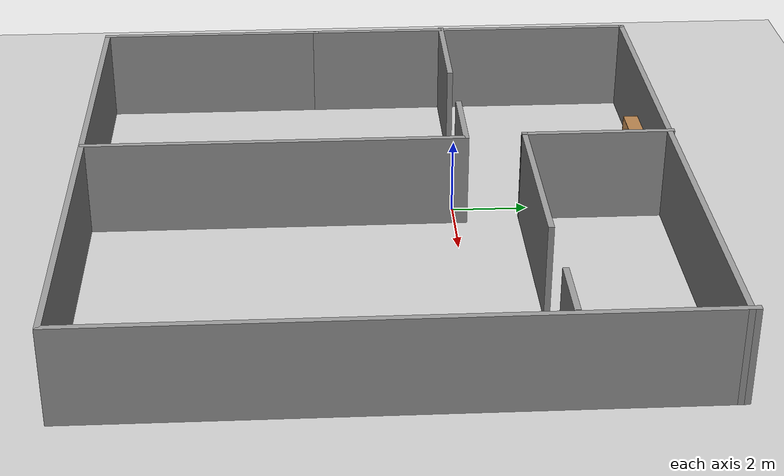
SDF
<sdf version="1.7">
 <world name="default">
  <light name="sun" type="directional">
   <pose>0 0 10 0 -0 0</pose>
   <diffuse>0.8 0.8 0.8 1</diffuse>
   <specular>0.2 0.2 0.2 1</specular>
   <attenuation>
    <range>1000</range>
    <constant>0.9</constant>
    <linear>0.01</linear>
    <quadratic>0.001</quadratic>
   </attenuation>
   <direction>-0.5 0.1 -0.9</direction>
   <spot><inner_angle>0</inner_angle><outer_angle>0</outer_angle><falloff>0</falloff></spot>
  </light>
  <model name="ground_plane">
   <static>1</static>
   <link name="link">
    <collision name="collision">
     <geometry><plane><normal>0 0 1</normal><size>100 100</size></plane></geometry>
     <surface><friction><ode><mu>100</mu><mu2>50</mu2></ode></friction></surface>
    </collision>
    <visual name="visual">
     <cast_shadows>0</cast_shadows>
     <geometry><plane><normal>0 0 1</normal><size>100 100</size></plane></geometry>
     <material>
      <script><uri>file://media/materials/scripts/gazebo.material</uri><name>Gazebo/Grey</name></script>
     </material>
    </visual>
   </link>
  </model>
  <gravity>0 0 -9.8</gravity>
  <magnetic_field>6e-06 2.3e-05 -4.2e-05</magnetic_field>
  <atmosphere type="adiabatic"/>
  <physics type="ode">
   <max_step_size>0.001</max_step_size>
   <real_time_factor>1</real_time_factor>
   <real_time_update_rate>1000</real_time_update_rate>
  </physics>
  <scene><ambient>0.4 0.4 0.4 1</ambient><background>0.7 0.7 0.7 1</background><shadows>1</shadows></scene>
  <spherical_coordinates>
   <surface_model>EARTH_WGS84</surface_model>
   <latitude_deg>0</latitude_deg>
   <longitude_deg>0</longitude_deg>
   <elevation>0</elevation>
   <heading_deg>0</heading_deg>
  </spherical_coordinates>
  <model name="my_world">
   <pose>1.286 -1.93355 0 0 -0 0</pose>
   <link name="Wall_0">
    <collision name="Wall_0_Collision">
     <geometry><box><size>6.25 0.15 2.5</size></box></geometry>
     <pose>0 0 1.25 0 -0 0</pose>
    </collision>
    <visual name="Wall_0_Visual">
     <pose>0 0 1.25 0 -0 0</pose>
     <geometry><box><size>6.25 0.15 2.5</size></box></geometry>
     <material>
      <script><uri>file://media/materials/scripts/gazebo.material</uri><name>Gazebo/Grey</name></script>
      <ambient>1 1 1 1</ambient>
     </material>
     <meta><layer>0</layer></meta>
    </visual>
    <pose>-7.77119 -4.625 0 0 -0 -1.5708</pose>
   </link>
   <link name="Wall_1">
    <collision name="Wall_1_Collision">
     <geometry><box><size>15.75 0.15 2.5</size></box></geometry>
     <pose>0 0 1.25 0 -0 0</pose>
    </collision>
    <visual name="Wall_1_Visual">
     <pose>0 0 1.25 0 -0 0</pose>
     <geometry><box><size>15.75 0.15 2.5</size></box></geometry>
     <material>
      <script><uri>file://media/materials/scripts/gazebo.material</uri><name>Gazebo/Grey</name></script>
      <ambient>1 1 1 1</ambient>
     </material>
     <meta><layer>0</layer></meta>
    </visual>
    <pose>0.028808 -7.675 0 0 -0 0</pose>
   </link>
   <link name="Wall_11">
    <collision name="Wall_11_Collision">
     <geometry><box><size>1.75 0.15 2.5</size></box></geometry>
     <pose>0 0 1.25 0 -0 0</pose>
    </collision>
    <visual name="Wall_11_Visual">
     <pose>0 0 1.25 0 -0 0</pose>
     <geometry><box><size>1.75 0.15 2.5</size></box></geometry>
     <material>
      <script><uri>file://media/materials/scripts/gazebo.material</uri><name>Gazebo/Grey</name></script>
      <ambient>1 1 1 1</ambient>
     </material>
     <meta><layer>0</layer></meta>
    </visual>
    <pose>6.85916 3.78858 0 0 -0 0</pose>
   </link>
   <link name="Wall_13">
    <collision name="Wall_13_Collision">
     <geometry><box><size>10 0.15 2.5</size></box></geometry>
     <pose>0 0 1.25 0 -0 0</pose>
    </collision>
    <visual name="Wall_13_Visual">
     <pose>0 0 1.25 0 -0 0</pose>
     <geometry><box><size>10 0.15 2.5</size></box></geometry>
     <material>
      <script><uri>file://media/materials/scripts/gazebo.material</uri><name>Gazebo/Grey</name></script>
      <ambient>1 1 1 1</ambient>
     </material>
     <meta><layer>0</layer></meta>
    </visual>
    <pose>-0.640104 -2.72711 0 0 -0 -1.5708</pose>
   </link>
   <link name="Wall_15">
    <collision name="Wall_15_Collision">
     <geometry><box><size>3.25 0.15 2.5</size></box></geometry>
     <pose>0 0 1.25 0 -0 0</pose>
    </collision>
    <visual name="Wall_15_Visual">
     <pose>0 0 1.25 0 -0 0</pose>
     <geometry><box><size>3.25 0.15 2.5</size></box></geometry>
     <material>
      <script><uri>file://media/materials/scripts/gazebo.material</uri><name>Gazebo/Grey</name></script>
      <ambient>1 1 1 1</ambient>
     </material>
     <meta><layer>0</layer></meta>
    </visual>
    <pose>-6.27881 2.13671 0 0 -0 0</pose>
   </link>
   <link name="Wall_19">
    <collision name="Wall_19_Collision">
     <geometry><box><size>2.25 0.15 2.5</size></box></geometry>
     <pose>0 0 1.25 0 -0 0</pose>
    </collision>
    <visual name="Wall_19_Visual">
     <pose>0 0 1.25 0 -0 0</pose>
     <geometry><box><size>2.25 0.15 2.5</size></box></geometry>
     <material>
      <script><uri>file://media/materials/scripts/gazebo.material</uri><name>Gazebo/Grey</name></script>
      <ambient>1 1 1 1</ambient>
     </material>
     <meta><layer>0</layer></meta>
    </visual>
    <pose>-1.6901 2.19789 0 0 -0 3.14159</pose>
   </link>
   <link name="Wall_2">
    <collision name="Wall_2_Collision">
     <geometry><box><size>15.5 0.15 2.5</size></box></geometry>
     <pose>0 0 1.25 0 -0 0</pose>
    </collision>
    <visual name="Wall_2_Visual">
     <pose>0 0 1.25 0 -0 0</pose>
     <geometry><box><size>15.5 0.15 2.5</size></box></geometry>
     <material>
      <script><uri>file://media/materials/scripts/gazebo.material</uri><name>Gazebo/Grey</name></script>
      <ambient>1 1 1 1</ambient>
     </material>
     <meta><layer>0</layer></meta>
    </visual>
    <pose>7.82881 -0 0 0 -0 1.5708</pose>
   </link>
   <link name="Wall_5">
    <collision name="Wall_5_Collision">
     <geometry><box><size>9.25 0.15 2.5</size></box></geometry>
     <pose>0 0 1.25 0 -0 0</pose>
    </collision>
    <visual name="Wall_5_Visual">
     <pose>0 0 1.25 0 -0 0</pose>
     <geometry><box><size>9.25 0.15 2.5</size></box></geometry>
     <material>
      <script><uri>file://media/materials/scripts/gazebo.material</uri><name>Gazebo/Grey</name></script>
      <ambient>1 1 1 1</ambient>
     </material>
     <meta><layer>0</layer></meta>
    </visual>
    <pose>-7.77119 2.975 0 0 -0 1.5708</pose>
   </link>
   <link name="Wall_6">
    <collision name="Wall_6_Collision">
     <geometry><box><size>15.75 0.15 2.5</size></box></geometry>
     <pose>0 0 1.25 0 -0 0</pose>
    </collision>
    <visual name="Wall_6_Visual">
     <pose>0 0 1.25 0 -0 0</pose>
     <geometry><box><size>15.75 0.15 2.5</size></box></geometry>
     <material>
      <script><uri>file://media/materials/scripts/gazebo.material</uri><name>Gazebo/Grey</name></script>
      <ambient>1 1 1 1</ambient>
     </material>
     <meta><layer>0</layer></meta>
    </visual>
    <pose>0.028808 7.525 0 0 -0 0</pose>
   </link>
   <link name="Wall_8">
    <collision name="Wall_8_Collision">
     <geometry><box><size>4 0.15 2.5</size></box></geometry>
     <pose>0 0 1.25 0 -0 0</pose>
    </collision>
    <visual name="Wall_8_Visual">
     <pose>0 0 1.25 0 -0 0</pose>
     <geometry><box><size>4 0.15 2.5</size></box></geometry>
     <material>
      <script><uri>file://media/materials/scripts/gazebo.material</uri><name>Gazebo/Grey</name></script>
      <ambient>1 1 1 1</ambient>
     </material>
     <meta><layer>0</layer></meta>
    </visual>
    <pose>-0.762465 5.65677 0 0 -0 -1.5708</pose>
   </link>
   <link name="Wall_9">
    <collision name="Wall_9_Collision">
     <geometry><box><size>5 0.15 2.5</size></box></geometry>
     <pose>0 0 1.25 0 -0 0</pose>
    </collision>
    <visual name="Wall_9_Visual">
     <pose>0 0 1.25 0 -0 0</pose>
     <geometry><box><size>5 0.15 2.5</size></box></geometry>
     <material>
      <script><uri>file://media/materials/scripts/gazebo.material</uri><name>Gazebo/Grey</name></script>
      <ambient>1 1 1 1</ambient>
     </material>
     <meta><layer>0</layer></meta>
    </visual>
    <pose>1.66254 3.73177 0 0 -0 0</pose>
   </link>
   <static>1</static>
  </model>
  <model name="bookshelf">
   <static>1</static>
   <link name="link">
    <inertial><mass>1</mass></inertial>
    <collision name="back">
     <pose>0 0.005 0.6 0 -0 0</pose>
     <geometry><box><size>0.9 0.01 1.2</size></box></geometry>
    </collision>
    <visual name="visual1">
     <pose>0 0.005 0.6 0 -0 0</pose>
     <geometry><box><size>0.9 0.01 1.2</size></box></geometry>
     <material>
      <script><uri>file://media/materials/scripts/gazebo.material</uri><name>Gazebo/Wood</name></script>
     </material>
    </visual>
    <collision name="left_side">
     <pose>0.45 -0.195 0.6 0 -0 0</pose>
     <geometry><box><size>0.02 0.4 1.2</size></box></geometry>
    </collision>
    <visual name="visual2">
     <pose>0.45 -0.195 0.6 0 -0 0</pose>
     <geometry><box><size>0.02 0.4 1.2</size></box></geometry>
     <material>
      <script><uri>file://media/materials/scripts/gazebo.material</uri><name>Gazebo/Wood</name></script>
     </material>
    </visual>
    <collision name="right_side">
     <pose>-0.45 -0.195 0.6 0 -0 0</pose>
     <geometry><box><size>0.02 0.4 1.2</size></box></geometry>
    </collision>
    <visual name="visual3">
     <pose>-0.45 -0.195 0.6 0 -0 0</pose>
     <geometry><box><size>0.02 0.4 1.2</size></box></geometry>
     <material>
      <script><uri>file://media/materials/scripts/gazebo.material</uri><name>Gazebo/Wood</name></script>
     </material>
    </visual>
    <collision name="bottom">
     <pose>0 -0.195 0.03 0 -0 0</pose>
     <geometry><box><size>0.88 0.4 0.06</size></box></geometry>
    </collision>
    <visual name="visual4">
     <pose>0 -0.195 0.03 0 -0 0</pose>
     <geometry><box><size>0.88 0.4 0.06</size></box></geometry>
     <material>
      <script><uri>file://media/materials/scripts/gazebo.material</uri><name>Gazebo/Wood</name></script>
     </material>
    </visual>
    <collision name="top">
     <pose>0 -0.195 1.19 0 -0 0</pose>
     <geometry><box><size>0.88 0.4 0.02</size></box></geometry>
    </collision>
    <visual name="visual5">
     <pose>0 -0.195 1.19 0 -0 0</pose>
     <geometry><box><size>0.88 0.4 0.02</size></box></geometry>
     <material>
      <script><uri>file://media/materials/scripts/gazebo.material</uri><name>Gazebo/Wood</name></script>
     </material>
    </visual>
    <collision name="low_shelf">
     <pose>0 -0.195 0.43 0 -0 0</pose>
     <geometry><box><size>0.88 0.4 0.02</size></box></geometry>
    </collision>
    <visual name="visual6">
     <pose>0 -0.195 0.43 0 -0 0</pose>
     <geometry><box><size>0.88 0.4 0.02</size></box></geometry>
     <material>
      <script><uri>file://media/materials/scripts/gazebo.material</uri><name>Gazebo/Wood</name></script>
     </material>
    </visual>
    <collision name="high_shelf">
     <pose>0 -0.195 0.8 0 -0 0</pose>
     <geometry><box><size>0.88 0.4 0.02</size></box></geometry>
    </collision>
    <visual name="visual7">
     <pose>0 -0.195 0.8 0 -0 0</pose>
     <geometry><box><size>0.88 0.4 0.02</size></box></geometry>
     <material>
      <script><uri>file://media/materials/scripts/gazebo.material</uri><name>Gazebo/Wood</name></script>
     </material>
    </visual>
   </link>
   <pose>-2.55744 5.51278 0 0 -0 0</pose>
  </model>
 </world>
</sdf>
